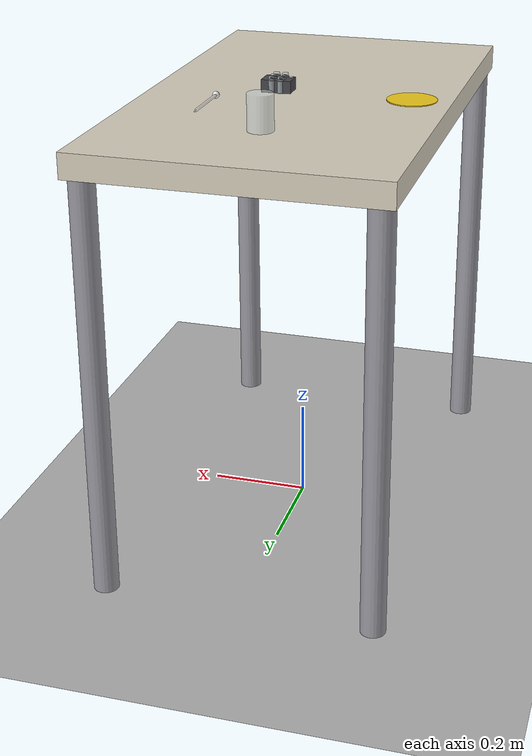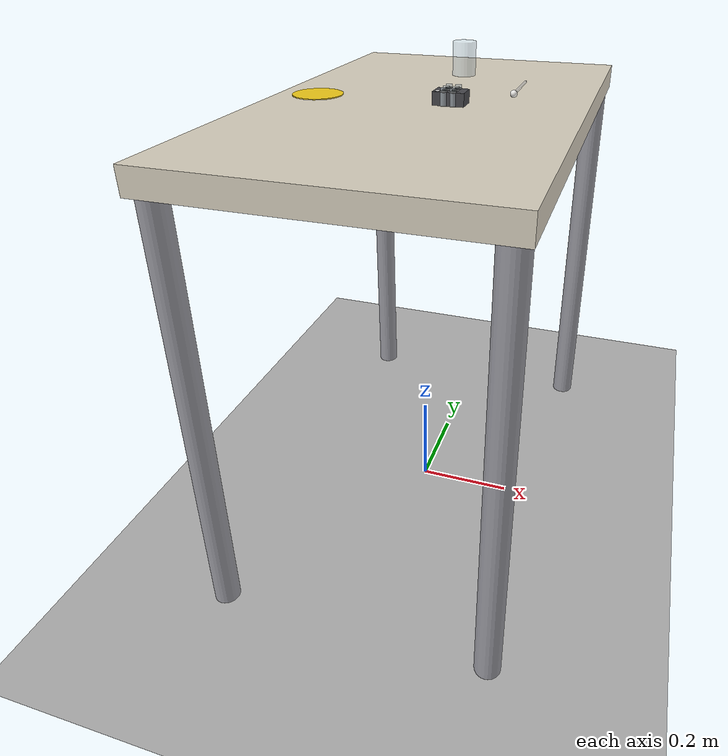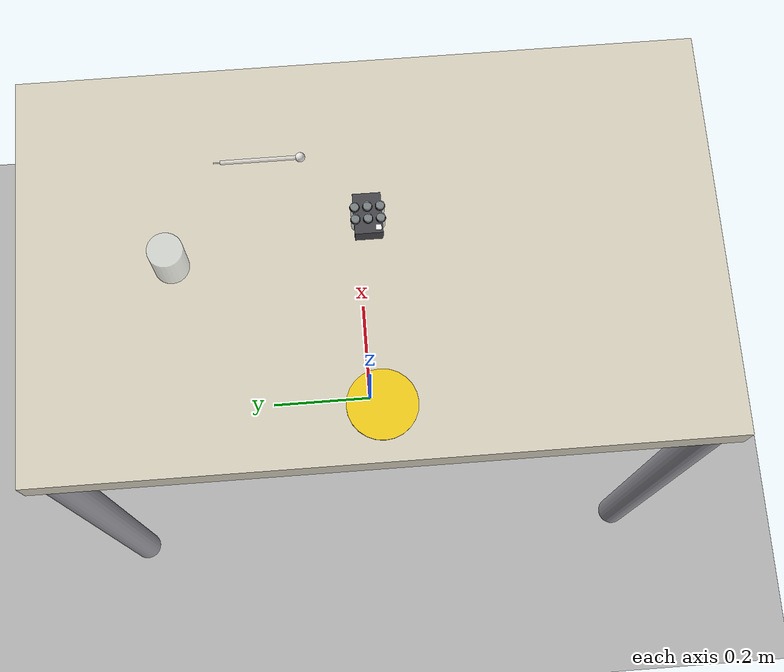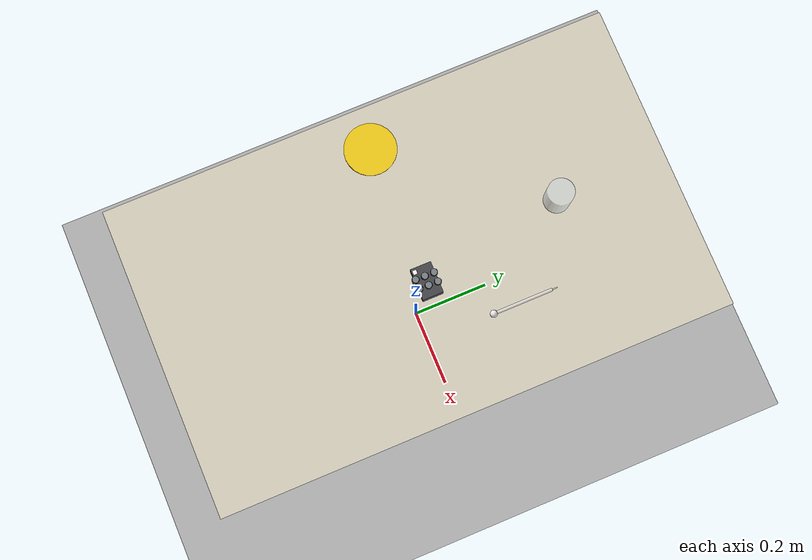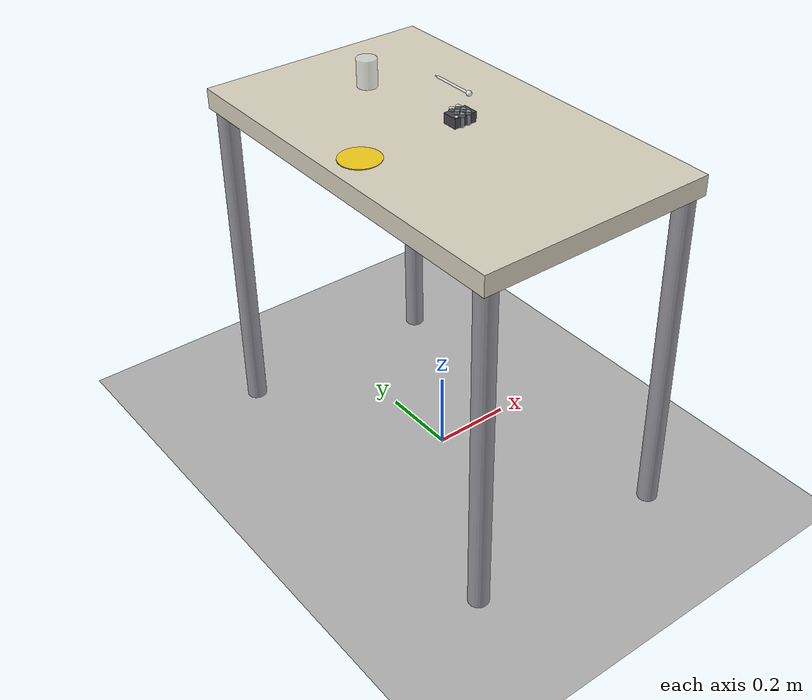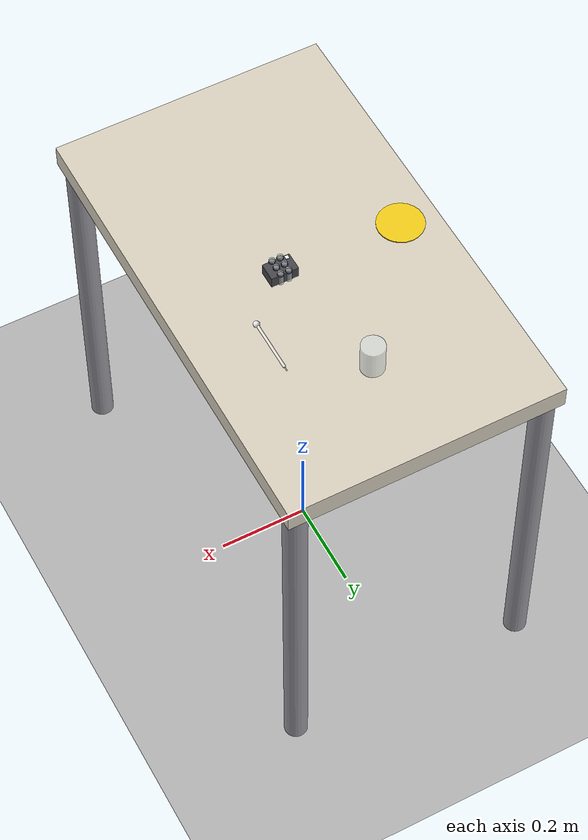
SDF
<?xml version="1.0" ?>
<sdf version="1.7">
  <world name="ketchup_transfer_to_vial_cell">

    <light name="sun" type="directional">
      <cast_shadows>true</cast_shadows>
      <pose>0 0 10 0 0 0</pose>
      <diffuse>0.8 0.8 0.8 1</diffuse>
      <specular>0.2 0.2 0.2 1</specular>
      <attenuation>
        <range>1000</range>
        <constant>0.9</constant>
        <linear>0.01</linear>
        <quadratic>0.001</quadratic>
      </attenuation>
      <direction>-0.5 0.1 -0.9</direction>
    </light>

    <model name="ground_plane">
      <static>true</static>
      <link name="link">
        <collision name="c">
          <geometry><plane><normal>0 0 1</normal><size>100 100</size></plane></geometry>
        </collision>
        <visual name="v">
          <geometry><plane><normal>0 0 1</normal><size>100 100</size></plane></geometry>
          <material>
            <ambient>0.60 0.60 0.60 1</ambient>
            <diffuse>0.70 0.70 0.70 1</diffuse>
          </material>
        </visual>
      </link>
    </model>

    <!-- Bench (top + 4 legs). Same as the other worlds. -->
    <model name="bench">
      <static>true</static>
      <pose>0 0 0 0 0 0</pose>
      <link name="link">
        <visual name="top">
          <pose>0 0 0.875 0 0 0</pose>
          <geometry><box><size>0.60 1.00 0.05</size></box></geometry>
          <material><ambient>0.85 0.82 0.75 1</ambient><diffuse>0.85 0.82 0.75 1</diffuse></material>
        </visual>
        <collision name="top_c">
          <pose>0 0 0.875 0 0 0</pose>
          <geometry><box><size>0.60 1.00 0.05</size></box></geometry>
        </collision>
        <visual name="leg_fr">
          <pose>0.27 -0.47 0.425 0 0 0</pose>
          <geometry><cylinder><radius>0.025</radius><length>0.850</length></cylinder></geometry>
          <material><ambient>0.45 0.45 0.48 1</ambient><diffuse>0.60 0.60 0.63 1</diffuse></material>
        </visual>
        <collision name="leg_fr_c">
          <pose>0.27 -0.47 0.425 0 0 0</pose>
          <geometry><cylinder><radius>0.025</radius><length>0.850</length></cylinder></geometry>
        </collision>
        <visual name="leg_fl">
          <pose>0.27 0.47 0.425 0 0 0</pose>
          <geometry><cylinder><radius>0.025</radius><length>0.850</length></cylinder></geometry>
          <material><ambient>0.45 0.45 0.48 1</ambient><diffuse>0.60 0.60 0.63 1</diffuse></material>
        </visual>
        <collision name="leg_fl_c">
          <pose>0.27 0.47 0.425 0 0 0</pose>
          <geometry><cylinder><radius>0.025</radius><length>0.850</length></cylinder></geometry>
        </collision>
        <visual name="leg_br">
          <pose>-0.27 -0.47 0.425 0 0 0</pose>
          <geometry><cylinder><radius>0.025</radius><length>0.850</length></cylinder></geometry>
          <material><ambient>0.45 0.45 0.48 1</ambient><diffuse>0.60 0.60 0.63 1</diffuse></material>
        </visual>
        <collision name="leg_br_c">
          <pose>-0.27 -0.47 0.425 0 0 0</pose>
          <geometry><cylinder><radius>0.025</radius><length>0.850</length></cylinder></geometry>
        </collision>
        <visual name="leg_bl">
          <pose>-0.27 0.47 0.425 0 0 0</pose>
          <geometry><cylinder><radius>0.025</radius><length>0.850</length></cylinder></geometry>
          <material><ambient>0.45 0.45 0.48 1</ambient><diffuse>0.60 0.60 0.63 1</diffuse></material>
        </visual>
        <collision name="leg_bl_c">
          <pose>-0.27 0.47 0.425 0 0 0</pose>
          <geometry><cylinder><radius>0.025</radius><length>0.850</length></cylinder></geometry>
        </collision>
      </link>
    </model>

    <!-- Arm base marker - same position as the other worlds. -->
    <model name="arm_base_marker">
      <static>true</static>
      <pose>-0.22 0.00 0.901 0 0 0</pose>
      <link name="disc">
        <visual name="v">
          <geometry><cylinder><radius>0.05</radius><length>0.002</length></cylinder></geometry>
          <material><ambient>0.95 0.80 0.10 1</ambient><diffuse>0.95 0.80 0.10 1</diffuse></material>
        </visual>
      </link>
    </model>

    <model name="source_beaker">
      <pose>0.00 0.28 0.935 0 0 0</pose>
      <link name="link">
        <inertial>
          <mass>0.120</mass>
          <inertia>
            <ixx>1.0e-4</ixx><iyy>1.0e-4</iyy><izz>5.0e-5</izz>
            <ixy>0</ixy><ixz>0</ixz><iyz>0</iyz>
          </inertia>
        </inertial>
        <visual name="glass">
          <geometry><cylinder><radius>0.025</radius><length>0.070</length></cylinder></geometry>
          <material>
            <ambient>0.85 0.90 0.92 0.50</ambient>
            <diffuse>0.85 0.90 0.92 0.50</diffuse>
          </material>
        </visual>
        <visual name="filtrate">
          <pose>0 0 -0.015 0 0 0</pose>
          <geometry><cylinder><radius>0.023</radius><length>0.040</length></cylinder></geometry>
          <material>
            <ambient>0.75 0.55 0.45 0.70</ambient>
            <diffuse>0.88 0.65 0.50 0.70</diffuse>
          </material>
        </visual>
        <collision name="c">
          <geometry><cylinder><radius>0.025</radius><length>0.070</length></cylinder></geometry>
        </collision>
      </link>
    </model>

    <model name="vial_tray">
      <static>true</static>
      <pose>0.05 0.00 0.9125 0 0 0</pose>
      <link name="link">
        <!-- Solid dark polymer body. Slot wells are NOT subtracted
             (Gazebo primitive limitation); the dark slot-mouth
             discs below are the operator's visual reference. -->
        <visual name="body">
          <geometry><box><size>0.06 0.04 0.025</size></box></geometry>
          <material><ambient>0.20 0.20 0.22 1</ambient><diffuse>0.28 0.28 0.30 1</diffuse></material>
        </visual>
        <collision name="c">
          <geometry><box><size>0.06 0.04 0.025</size></box></geometry>
        </collision>
        <!-- Position-1 corner marker: small white square at the
             tray's back-right corner, same convention as the
             Step 8 destination tray. -->
        <visual name="corner_marker">
          <pose>-0.022 -0.014 0.013 0 0 0</pose>
          <geometry><box><size>0.008 0.008 0.001</size></box></geometry>
          <material><ambient>0.98 0.98 0.98 1</ambient><diffuse>0.99 0.99 0.99 1</diffuse></material>
        </visual>
        <!-- 6 visible slot-mouth rings: dark Ø14 mm flat discs
             sitting flush with the tray top (z = +0.013 in tray-
             local). Same style as Step 8's 10x10 grid. -->
        <visual name="slot_r1_c1"><pose>-0.009 -0.018 0.013 0 0 0</pose><geometry><cylinder><radius>0.007</radius><length>0.001</length></cylinder></geometry><material><ambient>0.05 0.05 0.05 1</ambient><diffuse>0.08 0.08 0.08 1</diffuse></material></visual>
        <visual name="slot_r1_c2"><pose>-0.009  0.000 0.013 0 0 0</pose><geometry><cylinder><radius>0.007</radius><length>0.001</length></cylinder></geometry><material><ambient>0.05 0.05 0.05 1</ambient><diffuse>0.08 0.08 0.08 1</diffuse></material></visual>
        <visual name="slot_r1_c3"><pose>-0.009  0.018 0.013 0 0 0</pose><geometry><cylinder><radius>0.007</radius><length>0.001</length></cylinder></geometry><material><ambient>0.05 0.05 0.05 1</ambient><diffuse>0.08 0.08 0.08 1</diffuse></material></visual>
        <visual name="slot_r2_c1"><pose> 0.009 -0.018 0.013 0 0 0</pose><geometry><cylinder><radius>0.007</radius><length>0.001</length></cylinder></geometry><material><ambient>0.05 0.05 0.05 1</ambient><diffuse>0.08 0.08 0.08 1</diffuse></material></visual>
        <visual name="slot_r2_c2"><pose> 0.009  0.000 0.013 0 0 0</pose><geometry><cylinder><radius>0.007</radius><length>0.001</length></cylinder></geometry><material><ambient>0.05 0.05 0.05 1</ambient><diffuse>0.08 0.08 0.08 1</diffuse></material></visual>
        <visual name="slot_r2_c3"><pose> 0.009  0.018 0.013 0 0 0</pose><geometry><cylinder><radius>0.007</radius><length>0.001</length></cylinder></geometry><material><ambient>0.05 0.05 0.05 1</ambient><diffuse>0.08 0.08 0.08 1</diffuse></material></visual>
      </link>
    </model>

    <model name="vial_b1_r1">
      <pose>0.041 -0.018 0.916 0 0 0</pose>
      <link name="link">
        <inertial>
          <mass>0.005</mass>
          <inertia><ixx>5.0e-7</ixx><iyy>5.0e-7</iyy><izz>2.0e-7</izz>
            <ixy>0</ixy><ixz>0</ixz><iyz>0</iyz></inertia>
        </inertial>
        <visual name="v">
          <geometry><cylinder><radius>0.006</radius><length>0.032</length></cylinder></geometry>
          <material><ambient>0.85 0.90 0.92 0.55</ambient><diffuse>0.85 0.90 0.92 0.55</diffuse></material>
        </visual>
        <collision name="c">
          <geometry><cylinder><radius>0.006</radius><length>0.032</length></cylinder></geometry>
        </collision>
      </link>
    </model>
    <model name="vial_b1_r2">
      <pose>0.059 -0.018 0.916 0 0 0</pose>
      <link name="link">
        <inertial>
          <mass>0.005</mass>
          <inertia><ixx>5.0e-7</ixx><iyy>5.0e-7</iyy><izz>2.0e-7</izz>
            <ixy>0</ixy><ixz>0</ixz><iyz>0</iyz></inertia>
        </inertial>
        <visual name="v">
          <geometry><cylinder><radius>0.006</radius><length>0.032</length></cylinder></geometry>
          <material><ambient>0.85 0.90 0.92 0.55</ambient><diffuse>0.85 0.90 0.92 0.55</diffuse></material>
        </visual>
        <collision name="c">
          <geometry><cylinder><radius>0.006</radius><length>0.032</length></cylinder></geometry>
        </collision>
      </link>
    </model>
    <model name="vial_b2_r1">
      <pose>0.041 0.000 0.916 0 0 0</pose>
      <link name="link">
        <inertial>
          <mass>0.005</mass>
          <inertia><ixx>5.0e-7</ixx><iyy>5.0e-7</iyy><izz>2.0e-7</izz>
            <ixy>0</ixy><ixz>0</ixz><iyz>0</iyz></inertia>
        </inertial>
        <visual name="v">
          <geometry><cylinder><radius>0.006</radius><length>0.032</length></cylinder></geometry>
          <material><ambient>0.85 0.90 0.92 0.55</ambient><diffuse>0.85 0.90 0.92 0.55</diffuse></material>
        </visual>
        <collision name="c">
          <geometry><cylinder><radius>0.006</radius><length>0.032</length></cylinder></geometry>
        </collision>
      </link>
    </model>
    <model name="vial_b2_r2">
      <pose>0.059 0.000 0.916 0 0 0</pose>
      <link name="link">
        <inertial>
          <mass>0.005</mass>
          <inertia><ixx>5.0e-7</ixx><iyy>5.0e-7</iyy><izz>2.0e-7</izz>
            <ixy>0</ixy><ixz>0</ixz><iyz>0</iyz></inertia>
        </inertial>
        <visual name="v">
          <geometry><cylinder><radius>0.006</radius><length>0.032</length></cylinder></geometry>
          <material><ambient>0.85 0.90 0.92 0.55</ambient><diffuse>0.85 0.90 0.92 0.55</diffuse></material>
        </visual>
        <collision name="c">
          <geometry><cylinder><radius>0.006</radius><length>0.032</length></cylinder></geometry>
        </collision>
      </link>
    </model>
    <model name="vial_b3_r1">
      <pose>0.041 0.018 0.916 0 0 0</pose>
      <link name="link">
        <inertial>
          <mass>0.005</mass>
          <inertia><ixx>5.0e-7</ixx><iyy>5.0e-7</iyy><izz>2.0e-7</izz>
            <ixy>0</ixy><ixz>0</ixz><iyz>0</iyz></inertia>
        </inertial>
        <visual name="v">
          <geometry><cylinder><radius>0.006</radius><length>0.032</length></cylinder></geometry>
          <material><ambient>0.85 0.90 0.92 0.55</ambient><diffuse>0.85 0.90 0.92 0.55</diffuse></material>
        </visual>
        <collision name="c">
          <geometry><cylinder><radius>0.006</radius><length>0.032</length></cylinder></geometry>
        </collision>
      </link>
    </model>
    <model name="vial_b3_r2">
      <pose>0.059 0.018 0.916 0 0 0</pose>
      <link name="link">
        <inertial>
          <mass>0.005</mass>
          <inertia><ixx>5.0e-7</ixx><iyy>5.0e-7</iyy><izz>2.0e-7</izz>
            <ixy>0</ixy><ixz>0</ixz><iyz>0</iyz></inertia>
        </inertial>
        <visual name="v">
          <geometry><cylinder><radius>0.006</radius><length>0.032</length></cylinder></geometry>
          <material><ambient>0.85 0.90 0.92 0.55</ambient><diffuse>0.85 0.90 0.92 0.55</diffuse></material>
        </visual>
        <collision name="c">
          <geometry><cylinder><radius>0.006</radius><length>0.032</length></cylinder></geometry>
        </collision>
      </link>
    </model>

    <!-- The cap tray that used to sit at (-0.05, -0.28) was removed:
         the project skips Step 6 (Capping), so loose caps do not
         belong on this bench. -->

    <model name="pasteur_pipette">
      <pose>0.15 0.15 0.907 1.5708 0 0</pose>
      <link name="link">
        <inertial>
          <mass>0.004</mass>
          <inertia>
            <ixx>2.0e-7</ixx><iyy>5.0e-6</iyy><izz>5.0e-6</izz>
            <ixy>0</ixy><ixz>0</ixz><iyz>0</iyz>
          </inertia>
        </inertial>
        <visual name="bulb">
          <pose>0 0 0.060 0 0 0</pose>
          <geometry><sphere><radius>0.007</radius></sphere></geometry>
          <material><ambient>0.92 0.92 0.92 0.85</ambient><diffuse>0.97 0.97 0.97 0.85</diffuse></material>
        </visual>
        <visual name="stem">
          <pose>0 0 0 0 0 0</pose>
          <geometry><cylinder><radius>0.003</radius><length>0.110</length></cylinder></geometry>
          <material><ambient>0.92 0.92 0.92 0.55</ambient><diffuse>0.97 0.97 0.97 0.55</diffuse></material>
        </visual>
        <visual name="tip">
          <pose>0 0 -0.060 0 0 0</pose>
          <geometry><cylinder><radius>0.001</radius><length>0.010</length></cylinder></geometry>
          <material><ambient>0.92 0.92 0.92 0.55</ambient><diffuse>0.97 0.97 0.97 0.55</diffuse></material>
        </visual>
        <collision name="c">
          <geometry><cylinder><radius>0.007</radius><length>0.145</length></cylinder></geometry>
        </collision>
      </link>
    </model>

  </world>
</sdf>
